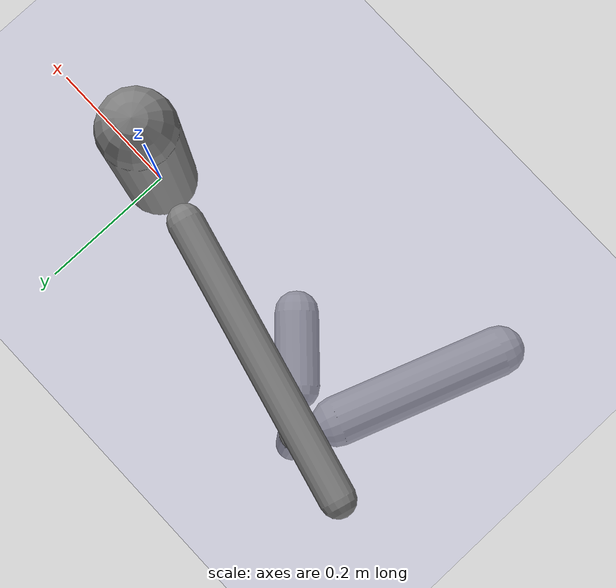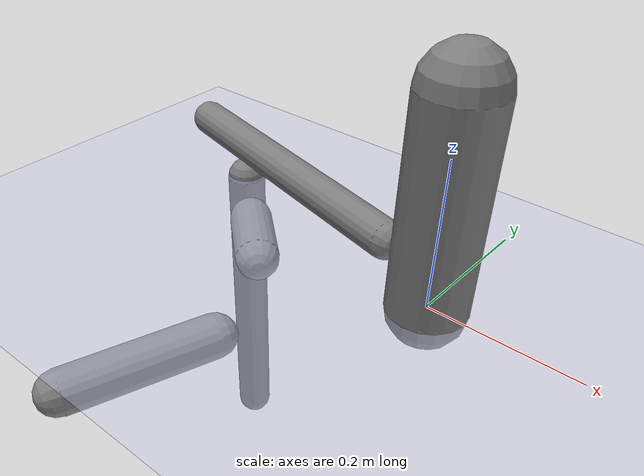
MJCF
<?xml version='1.0' encoding='UTF-8'?>
<mujoco model="robot_model">
  <worldbody>
    <light name="light" pos="0 -3 10" dir="0 0.5 -1" diffuse=".8 .8 .8" specular="0.1 0.1 0.1"/>
    <geom name="floor" type="plane" size="10.0 10.0 0.1" pos="0 0 0" rgba="0.8 0.8 1 1" contype="2" conaffinity="1"/>
    <body name="limb0" pos="0 0 0">
      <geom name="limb0_geom" type="capsule" fromto="0 0 0 0 0 0.2797215636428" size="0.052183597027905114" density="745.8119714770129" contype="1" conaffinity="2"/>
      <site type="sphere" size="0.01" name="limb0_site0" pos="-0.07985868787685776 0.020087457871656077 0.052690191805546176" quat="0.7071067811865476 -0.17249074545559395 -0.6857455378871767 0.0"/>
      <freejoint name="limb0_root"/>
      <body name="limb1" pos="-0.07985868787685776 0.020087457871656077 0.052690191805546176" quat="0.7071067811865476 -0.17249074545559395 -0.6857455378871767 0.0">
        <geom name="limb1_geom" type="capsule" fromto="0 0 0 0 0 0.428139995862816" size="0.026162720395273852" density="1053.9208176403017" contype="1" conaffinity="2"/>
        <site type="sphere" size="0.01" name="limb1_site0" pos="-0.05671969144630606 0.016096167042923954 0.32313966214382733" quat="0.7071067811865476 -0.19304318345073765 -0.6802457859650473 0.0"/>
        <body name="limb2" pos="-0.05671969144630606 0.016096167042923954 0.32313966214382733" quat="0.7071067811865476 -0.19304318345073765 -0.6802457859650473 0.0">
          <geom name="limb2_geom" type="capsule" fromto="0 0 0 0 0 0.494637864081395" size="0.02879667233597699" density="948.104082869691" contype="1" conaffinity="2"/>
          <site type="sphere" size="0.01" name="limb2_site0" pos="-0.06321464319786008 -0.013809800639272573 0.037809634039459916" quat="0.7071067811865476 0.15091458538187963 -0.6908145828795272 0.0"/>
          <site type="sphere" size="0.01" name="limb2_site1" pos="-0.013342499859832817 -0.07315635489590289 0.3045070014252576" quat="0.7071067811865476 0.6956317889781165 -0.12687164444076995 0.0"/>
          <body name="limb3" pos="-0.06321464319786008 -0.013809800639272573 0.037809634039459916" quat="0.7071067811865476 0.15091458538187963 -0.6908145828795272 0.0">
            <geom name="limb3_geom" type="capsule" fromto="0 0 0 0 0 0.10613728142510828" size="0.03190882749463409" density="400.0" contype="1" conaffinity="2"/>
            <joint name="joint_limb2_limb3_0" type="hinge" axis="0 0 1" range="-24.645341428203015 24.645341428203015" damping="5.0"/>
          </body>
          <body name="limb4" pos="-0.013342499859832817 -0.07315635489590289 0.3045070014252576" quat="0.7071067811865476 0.6956317889781165 -0.12687164444076995 0.0">
            <geom name="limb4_geom" type="capsule" fromto="0 0 0 0 0 0.2880254309986158" size="0.04156645403835542" density="622.9700961301037" contype="1" conaffinity="2"/>
            <joint name="joint_limb2_limb4_0" type="hinge" axis="0 0 1" range="-110.6356098919919 110.6356098919919" damping="5.0"/>
          </body>
          <joint name="joint_limb1_limb2_0" type="hinge" axis="1 0 0" range="-60.6612845033848 60.6612845033848" damping="5.0"/>
        </body>
        <joint name="joint_limb0_limb1_0" type="hinge" axis="0 1 0" range="-79.43746025127588 79.43746025127588" damping="5.0"/>
      </body>
    </body>
  </worldbody>
  <actuator>
    <position name="position_actuator_joint_limb0_limb1_0" joint="joint_limb0_limb1_0" gear="1.5835672608966855" inheritrange="1" forcerange="-5.2468277726386265 5.2468277726386265" forcelimited="true" kp="100.0"/>
    <position name="position_actuator_joint_limb1_limb2_0" joint="joint_limb1_limb2_0" gear="0.9597608262960533" inheritrange="1" forcerange="-6.582864995101875 6.582864995101875" forcelimited="true" kp="100.0"/>
    <position name="position_actuator_joint_limb2_limb3_0" joint="joint_limb2_limb3_0" gear="1.9645198475258745" inheritrange="1" forcerange="-0.951176427462961 0.951176427462961" forcelimited="true" kp="100.0"/>
    <position name="position_actuator_joint_limb2_limb4_0" joint="joint_limb2_limb4_0" gear="1.1975435425284842" inheritrange="1" forcerange="-5.806751304878594 5.806751304878594" forcelimited="true" kp="100.0"/>
  </actuator>
  <contact>
    <pair geom1="limb0_geom" geom2="limb1_geom"/>
    <pair geom1="limb1_geom" geom2="limb2_geom"/>
    <pair geom1="limb2_geom" geom2="limb3_geom"/>
    <pair geom1="limb2_geom" geom2="limb4_geom"/>
  </contact>
</mujoco>
